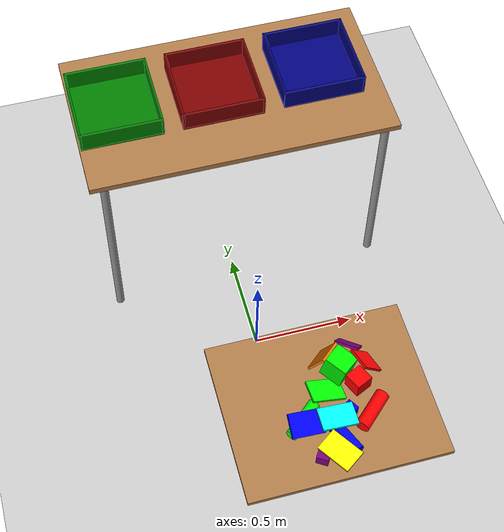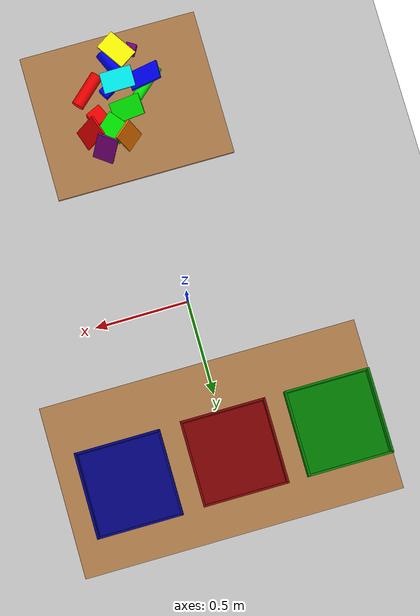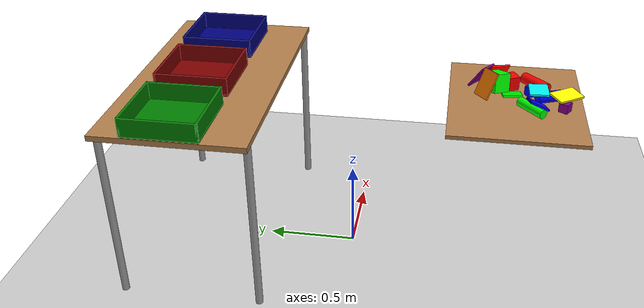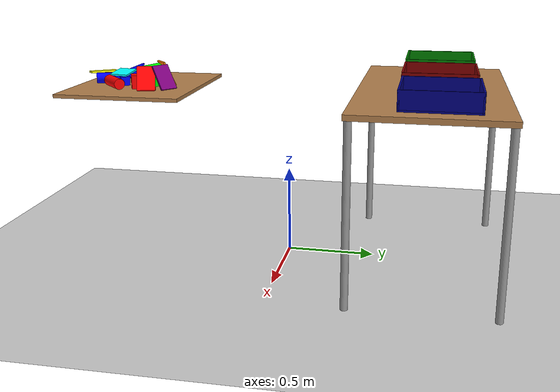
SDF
<sdf version="1.7">
 <world name="default">
  <light name="sun" type="directional">
   <pose>0 0 10 0 -0 0</pose>
   <diffuse>0.8 0.8 0.8 1</diffuse>
   <specular>0.2 0.2 0.2 1</specular>
   <attenuation>
    <range>1000</range>
    <constant>0.9</constant>
    <linear>0.01</linear>
    <quadratic>0.001</quadratic>
   </attenuation>
   <direction>-0.5 0.1 -0.9</direction>
   <spot><inner_angle>0</inner_angle><outer_angle>0</outer_angle><falloff>0</falloff></spot>
  </light>
  <model name="ground_plane">
   <static>1</static>
   <link name="link">
    <collision name="collision">
     <geometry><plane><normal>0 0 1</normal><size>100 100</size></plane></geometry>
     <surface><friction><ode><mu>100</mu><mu2>50</mu2></ode></friction></surface>
    </collision>
    <visual name="visual">
     <cast_shadows>0</cast_shadows>
     <geometry><plane><normal>0 0 1</normal><size>100 100</size></plane></geometry>
     <material>
      <script><uri>file://media/materials/scripts/gazebo.material</uri><name>Gazebo/Grey</name></script>
     </material>
    </visual>
   </link>
  </model>
  <gravity>0 0 -9.8</gravity>
  <magnetic_field>6e-06 2.3e-05 -4.2e-05</magnetic_field>
  <atmosphere type="adiabatic"/>
  <physics type="ode">
   <max_step_size>0.001</max_step_size>
   <real_time_factor>1</real_time_factor>
   <real_time_update_rate>1000</real_time_update_rate>
  </physics>
  <scene><ambient>0.4 0.4 0.4 1</ambient><background>0.7 0.7 0.7 1</background><shadows>1</shadows></scene>
  <audio><device>default</device></audio>
  <spherical_coordinates>
   <surface_model>EARTH_WGS84</surface_model>
   <latitude_deg>0</latitude_deg>
   <longitude_deg>0</longitude_deg>
   <elevation>0</elevation>
   <heading_deg>0</heading_deg>
  </spherical_coordinates>
  <model name="table">
   <static>1</static>
   <link name="link">
    <collision name="surface">
     <pose>0 0 1 0 -0 0</pose>
     <geometry><box><size>1.5 0.8 0.03</size></box></geometry>
     <surface>
      <friction><ode><mu>10</mu><mu2>5</mu2></ode></friction>
      <contact><ode><soft_cfm>0.0001</soft_cfm><soft_erp>0.4</soft_erp><kp>1e+06</kp><kd>10</kd></ode></contact>
     </surface>
    </collision>
    <visual name="visual1">
     <pose>0 0 1 0 -0 0</pose>
     <geometry><box><size>1.5 0.8 0.03</size></box></geometry>
     <material>
      <script><uri>file://media/materials/scripts/gazebo.material</uri><name>Gazebo/Wood</name></script>
     </material>
    </visual>
    <collision name="front_left_leg">
     <pose>0.68 0.38 0.5 0 -0 0</pose>
     <geometry><cylinder><radius>0.02</radius><length>1</length></cylinder></geometry>
    </collision>
    <visual name="front_left_leg">
     <pose>0.68 0.38 0.5 0 -0 0</pose>
     <geometry><cylinder><radius>0.02</radius><length>1</length></cylinder></geometry>
     <material>
      <script><uri>file://media/materials/scripts/gazebo.material</uri><name>Gazebo/Grey</name></script>
     </material>
    </visual>
    <collision name="front_right_leg">
     <pose>0.68 -0.38 0.5 0 -0 0</pose>
     <geometry><cylinder><radius>0.02</radius><length>1</length></cylinder></geometry>
    </collision>
    <visual name="front_right_leg">
     <pose>0.68 -0.38 0.5 0 -0 0</pose>
     <geometry><cylinder><radius>0.02</radius><length>1</length></cylinder></geometry>
     <material>
      <script><uri>file://media/materials/scripts/gazebo.material</uri><name>Gazebo/Grey</name></script>
     </material>
    </visual>
    <collision name="back_right_leg">
     <pose>-0.68 -0.38 0.5 0 -0 0</pose>
     <geometry><cylinder><radius>0.02</radius><length>1</length></cylinder></geometry>
    </collision>
    <visual name="back_right_leg">
     <pose>-0.68 -0.38 0.5 0 -0 0</pose>
     <geometry><cylinder><radius>0.02</radius><length>1</length></cylinder></geometry>
     <material>
      <script><uri>file://media/materials/scripts/gazebo.material</uri><name>Gazebo/Grey</name></script>
     </material>
    </visual>
    <collision name="back_left_leg">
     <pose>-0.68 0.38 0.5 0 -0 0</pose>
     <geometry><cylinder><radius>0.02</radius><length>1</length></cylinder></geometry>
    </collision>
    <visual name="back_left_leg">
     <pose>-0.68 0.38 0.5 0 -0 0</pose>
     <geometry><cylinder><radius>0.02</radius><length>1</length></cylinder></geometry>
     <material>
      <script><uri>file://media/materials/scripts/gazebo.material</uri><name>Gazebo/Grey</name></script>
     </material>
    </visual>
    <inertial>
     <inertia><ixx>1</ixx><ixy>0</ixy><ixz>0</ixz><iyy>1</iyy><iyz>0</iyz><izz>1</izz></inertia>
     <mass>50</mass>
    </inertial>
   </link>
   <pose>0.056083 0.801191 -1.2e-05 0 -0 2.5e-05</pose>
  </model>
  <plugin name="gazebo_link_attacher" filename="libgazebo_link_attacher.so"/>
  <plugin name="gazebo_ros_state" filename="libgazebo_ros_state.so">
   <namespace>/gazebo</namespace>
   <update_rate>100</update_rate>
  </plugin>
  <model name="cube_b">
   <link name="link_2">
    <inertial>
     <mass>2</mass>
     <inertia>
      <ixx>0.00083333</ixx>
      <ixy>0</ixy>
      <ixz>0</ixz>
      <iyy>0.00083333</iyy>
      <iyz>0</iyz>
      <izz>0.00083333</izz>
     </inertia>
    </inertial>
    <visual name="visual">
     <geometry><box><size>0.05 0.05 0.05</size></box></geometry>
     <material>
      <lighting>1</lighting>
      <script><uri>file://media/materials/scripts/gazebo.material</uri><name>Gazebo/Grey</name></script>
      <ambient>0 0 1 1</ambient>
      <diffuse>0 0 1 1</diffuse>
      <specular>0 0 0 1</specular>
      <emissive>0 0 0 1</emissive>
      <shader type="vertex"><normal_map>__default__</normal_map></shader>
     </material>
    </visual>
    <collision name="collision">
     <geometry><box><size>0.05 0.05 0.05</size></box></geometry>
     <surface>
      <friction>
       <ode><mu>0.8</mu><mu2>0.8</mu2><fdir1>0 0 0</fdir1><slip1>0</slip1><slip2>0</slip2></ode>
       <torsional>
        <coefficient>1</coefficient>
        <patch_radius>0</patch_radius>
        <surface_radius>0</surface_radius>
        <use_patch_radius>1</use_patch_radius>
        <ode><slip>0</slip></ode>
       </torsional>
      </friction>
      <bounce><restitution_coefficient>0</restitution_coefficient><threshold>1e+06</threshold></bounce>
      <contact>
       <collide_without_contact>0</collide_without_contact>
       <collide_without_contact_bitmask>1</collide_without_contact_bitmask>
       <collide_bitmask>1</collide_bitmask>
       <ode>
        <soft_cfm>0.0001</soft_cfm>
        <soft_erp>0.4</soft_erp>
        <kp>1e+06</kp>
        <kd>10</kd>
        <max_vel>0.01</max_vel>
        <min_depth>0</min_depth>
       </ode>
      </contact>
     </surface>
    </collision>
   </link>
   <static>0</static>
   <allow_auto_disable>0</allow_auto_disable>
   <pose>0.112492 -0.943072 1.01094 -0.004136 0.001196 2.11675</pose>
  </model>
  <model name="cube_g">
   <link name="link_2">
    <inertial>
     <mass>2</mass>
     <inertia>
      <ixx>0.00333333</ixx>
      <iyy>0.00333333</iyy>
      <izz>0.00333333</izz>
      <ixy>0</ixy>
      <ixz>0</ixz>
      <iyz>0</iyz>
     </inertia>
    </inertial>
    <visual name="visual">
     <geometry><box><size>0.1 0.1 0.1</size></box></geometry>
     <material>
      <lighting>1</lighting>
      <script><uri>file://media/materials/scripts/gazebo.material</uri><name>Gazebo/Grey</name></script>
      <ambient>0 1 0 1</ambient>
      <diffuse>0 1 0 1</diffuse>
      <specular>0 0 0 1</specular>
      <emissive>0 0 0 1</emissive>
      <shader type="vertex"><normal_map>__default__</normal_map></shader>
     </material>
    </visual>
    <collision name="collision">
     <geometry><box><size>0.1 0.1 0.1</size></box></geometry>
     <surface>
      <friction>
       <ode><mu>0.8</mu><mu2>0.8</mu2><fdir1>0 0 0</fdir1><slip1>0</slip1><slip2>0</slip2></ode>
       <torsional>
        <coefficient>1</coefficient>
        <patch_radius>0</patch_radius>
        <surface_radius>0</surface_radius>
        <use_patch_radius>1</use_patch_radius>
        <ode><slip>0</slip></ode>
       </torsional>
      </friction>
      <bounce><restitution_coefficient>0</restitution_coefficient><threshold>1e+06</threshold></bounce>
      <contact>
       <collide_without_contact>0</collide_without_contact>
       <collide_without_contact_bitmask>1</collide_without_contact_bitmask>
       <collide_bitmask>1</collide_bitmask>
       <ode>
        <soft_cfm>0.0001</soft_cfm>
        <soft_erp>0.4</soft_erp>
        <kp>1e+06</kp>
        <kd>10</kd>
        <max_vel>0.01</max_vel>
        <min_depth>0</min_depth>
       </ode>
      </contact>
     </surface>
    </collision>
   </link>
   <static>0</static>
   <allow_auto_disable>0</allow_auto_disable>
   <pose>0.123781 -0.757255 1.04953 -2.46324 -1.36837 0.001389</pose>
  </model>
  <model name="cube_r">
   <link name="link_2">
    <inertial>
     <mass>2</mass>
     <inertia>
      <ixx>0.001875</ixx>
      <ixy>0</ixy>
      <ixz>0</ixz>
      <iyy>0.001875</iyy>
      <iyz>0</iyz>
      <izz>0.001875</izz>
     </inertia>
    </inertial>
    <visual name="visual">
     <geometry><box><size>0.075 0.075 0.075</size></box></geometry>
     <material>
      <lighting>1</lighting>
      <script><uri>file://media/materials/scripts/gazebo.material</uri><name>Gazebo/Grey</name></script>
      <ambient>1 0 0 1</ambient>
      <diffuse>1 0 0 1</diffuse>
      <specular>0 0 0 1</specular>
      <emissive>0 0 0 1</emissive>
      <shader type="vertex"><normal_map>__default__</normal_map></shader>
     </material>
    </visual>
    <collision name="collision">
     <geometry><box><size>0.075 0.075 0.075</size></box></geometry>
     <surface>
      <friction>
       <ode><mu>0.8</mu><mu2>0.8</mu2><fdir1>0 0 0</fdir1><slip1>0</slip1><slip2>0</slip2></ode>
       <torsional>
        <coefficient>1</coefficient>
        <patch_radius>0</patch_radius>
        <surface_radius>0</surface_radius>
        <use_patch_radius>1</use_patch_radius>
        <ode><slip>0</slip></ode>
       </torsional>
      </friction>
      <bounce><restitution_coefficient>0</restitution_coefficient><threshold>1e+06</threshold></bounce>
      <contact>
       <collide_without_contact>0</collide_without_contact>
       <collide_without_contact_bitmask>1</collide_without_contact_bitmask>
       <collide_bitmask>1</collide_bitmask>
       <ode>
        <soft_cfm>0.0001</soft_cfm>
        <soft_erp>0.4</soft_erp>
        <kp>1e+06</kp>
        <kd>10</kd>
        <max_vel>0.01</max_vel>
        <min_depth>0</min_depth>
       </ode>
      </contact>
     </surface>
    </collision>
   </link>
   <static>0</static>
   <allow_auto_disable>0</allow_auto_disable>
   <pose>0.185536 -0.832558 1.02387 -0.15909 1.56648 0.267414</pose>
  </model>
  <model name="cylinder_r">
   <link name="link_0">
    <inertial>
     <mass>0.2</mass>
     <inertia>
      <ixx>0.0005267</ixx>
      <ixy>0</ixy>
      <ixz>0</ixz>
      <iyy>0.0005267</iyy>
      <iyz>0</iyz>
      <izz>9e-05</izz>
     </inertia>
    </inertial>
    <visual name="visual">
     <geometry><cylinder><radius>0.03</radius><length>0.17</length></cylinder></geometry>
     <material>
      <lighting>1</lighting>
      <script><uri>file://media/materials/scripts/gazebo.material</uri><name>Gazebo/Grey</name></script>
      <ambient>1 0 0 1</ambient>
      <diffuse>1 0 0 1</diffuse>
      <specular>0 0 0 1</specular>
      <emissive>0 0 0 1</emissive>
      <shader type="vertex"><normal_map>__default__</normal_map></shader>
     </material>
    </visual>
    <collision name="collision">
     <geometry><cylinder><radius>0.03</radius><length>0.17</length></cylinder></geometry>
     <surface>
      <friction>
       <ode><mu>0.5</mu><mu2>0.5</mu2><fdir1>0 0 0</fdir1><slip1>0</slip1><slip2>0</slip2></ode>
       <torsional>
        <coefficient>1</coefficient>
        <patch_radius>0</patch_radius>
        <surface_radius>0</surface_radius>
        <use_patch_radius>1</use_patch_radius>
        <ode><slip>0</slip></ode>
       </torsional>
      </friction>
      <bounce><restitution_coefficient>0</restitution_coefficient><threshold>1e+06</threshold></bounce>
      <contact>
       <collide_without_contact>0</collide_without_contact>
       <collide_without_contact_bitmask>1</collide_without_contact_bitmask>
       <collide_bitmask>1</collide_bitmask>
       <ode>
        <soft_cfm>0.0001</soft_cfm>
        <soft_erp>0.4</soft_erp>
        <kp>1e+06</kp>
        <kd>10</kd>
        <max_vel>0.01</max_vel>
        <min_depth>0</min_depth>
       </ode>
      </contact>
     </surface>
    </collision>
   </link>
   <static>0</static>
   <allow_auto_disable>0</allow_auto_disable>
   <pose>0.200333 -0.969978 1.01628 1.56546 0.770203 2.31146</pose>
  </model>
  <model name="cylinder_b">
   <link name="link_0">
    <inertial>
     <mass>0.2</mass>
     <inertia>
      <ixx>0.0005267</ixx>
      <ixy>0</ixy>
      <ixz>0</ixz>
      <iyy>0.0005267</iyy>
      <iyz>0</iyz>
      <izz>9e-05</izz>
     </inertia>
    </inertial>
    <visual name="visual">
     <geometry><cylinder><radius>0.03</radius><length>0.17</length></cylinder></geometry>
     <material>
      <lighting>1</lighting>
      <ambient>0 0 1 1</ambient>
      <diffuse>0 0 1 1</diffuse>
      <specular>0.1 0.1 0.1 1</specular>
      <emissive>0 0 0 1</emissive>
      <shader type="vertex"><normal_map>__default__</normal_map></shader>
     </material>
    </visual>
    <collision name="collision">
     <geometry><cylinder><radius>0.03</radius><length>0.17</length></cylinder></geometry>
     <surface>
      <friction>
       <ode><mu>0.4</mu><mu2>0.4</mu2><fdir1>0 0 0</fdir1><slip1>0</slip1><slip2>0</slip2></ode>
       <torsional>
        <coefficient>1</coefficient>
        <patch_radius>0</patch_radius>
        <surface_radius>0</surface_radius>
        <use_patch_radius>1</use_patch_radius>
        <ode><slip>0</slip></ode>
       </torsional>
      </friction>
      <bounce><restitution_coefficient>0</restitution_coefficient><threshold>1e+06</threshold></bounce>
      <contact>
       <collide_without_contact>0</collide_without_contact>
       <collide_without_contact_bitmask>1</collide_without_contact_bitmask>
       <collide_bitmask>1</collide_bitmask>
       <ode>
        <soft_cfm>0.0001</soft_cfm>
        <soft_erp>0.4</soft_erp>
        <kp>1e+06</kp>
        <kd>10</kd>
        <max_vel>0.01</max_vel>
        <min_depth>0</min_depth>
       </ode>
      </contact>
     </surface>
    </collision>
   </link>
   <static>0</static>
   <allow_auto_disable>0</allow_auto_disable>
   <pose>0.055147 -1.0478 1.01557 1.56559 1.42754 0.397446</pose>
  </model>
  <model name="cylinder_g">
   <link name="link_0">
    <inertial>
     <mass>0.2</mass>
     <inertia>
      <ixx>0.0005129</ixx>
      <ixy>0</ixy>
      <ixz>0</ixz>
      <iyy>0.0005129</iyy>
      <iyz>0</iyz>
      <izz>6.25e-05</izz>
     </inertia>
    </inertial>
    <visual name="visual">
     <geometry><cylinder><radius>0.025</radius><length>0.17</length></cylinder></geometry>
     <material>
      <lighting>1</lighting>
      <ambient>0 1 0 1</ambient>
      <diffuse>0 1 0 1</diffuse>
      <specular>0.1 0.1 0.1 1</specular>
      <emissive>0 0 0 1</emissive>
      <shader type="vertex"><normal_map>__default__</normal_map></shader>
     </material>
    </visual>
    <collision name="collision">
     <geometry><cylinder><radius>0.025</radius><length>0.17</length></cylinder></geometry>
     <surface>
      <friction>
       <ode><mu>0.5</mu><mu2>0.5</mu2><fdir1>0 0 0</fdir1><slip1>0</slip1><slip2>0</slip2></ode>
       <torsional>
        <coefficient>1</coefficient>
        <patch_radius>0</patch_radius>
        <surface_radius>0</surface_radius>
        <use_patch_radius>1</use_patch_radius>
        <ode><slip>0</slip></ode>
       </torsional>
      </friction>
      <bounce><restitution_coefficient>0</restitution_coefficient><threshold>1e+06</threshold></bounce>
      <contact>
       <collide_without_contact>0</collide_without_contact>
       <collide_without_contact_bitmask>1</collide_without_contact_bitmask>
       <collide_bitmask>1</collide_bitmask>
       <ode>
        <soft_cfm>0.0001</soft_cfm>
        <soft_erp>0.4</soft_erp>
        <kp>1e+06</kp>
        <kd>10</kd>
        <max_vel>0.01</max_vel>
        <min_depth>0</min_depth>
       </ode>
      </contact>
     </surface>
    </collision>
   </link>
   <static>0</static>
   <allow_auto_disable>0</allow_auto_disable>
   <pose>-0.080159 -0.935225 1.01013 -1.58097 -1.18928 2.29525</pose>
  </model>
  <model name="cuboid_r">
   <link name="link">
    <inertial>
     <mass>2</mass>
     <inertia>
      <ixx>0.001683</ixx>
      <iyy>0.003767</iyy>
      <izz>0.005417</izz>
      <ixy>0</ixy>
      <ixz>0</ixz>
      <iyz>0</iyz>
     </inertia>
    </inertial>
    <visual name="visual">
     <geometry><box><size>0.15 0.1 0.01</size></box></geometry>
     <material><ambient>1 0 0 1</ambient><diffuse>1 0 0 1</diffuse><specular>0.1 0.1 0.1 1</specular></material>
    </visual>
    <collision name="collision">
     <geometry><box><size>0.15 0.1 0.01</size></box></geometry>
     <surface>
      <friction>
       <ode><mu>0.6</mu><mu2>0.6</mu2><fdir1>0 0 0</fdir1><slip1>0</slip1><slip2>0</slip2></ode>
       <torsional>
        <coefficient>1</coefficient>
        <patch_radius>0</patch_radius>
        <surface_radius>0</surface_radius>
        <use_patch_radius>1</use_patch_radius>
        <ode><slip>0</slip></ode>
       </torsional>
      </friction>
      <bounce><restitution_coefficient>0</restitution_coefficient><threshold>1e+06</threshold></bounce>
      <contact>
       <collide_without_contact>0</collide_without_contact>
       <collide_without_contact_bitmask>1</collide_without_contact_bitmask>
       <collide_bitmask>1</collide_bitmask>
       <ode>
        <soft_cfm>0.0001</soft_cfm>
        <soft_erp>0.4</soft_erp>
        <kp>1e+06</kp>
        <kd>10</kd>
        <max_vel>0.01</max_vel>
        <min_depth>0</min_depth>
       </ode>
      </contact>
     </surface>
    </collision>
   </link>
   <static>0</static>
   <allow_auto_disable>0</allow_auto_disable>
   <pose>0.237823 -0.764089 1.04917 0.000413 -0.911117 -2.82503</pose>
  </model>
  <model name="cuboid_g">
   <link name="link">
    <inertial>
     <mass>2</mass>
     <inertia>
      <ixx>0.001683</ixx>
      <iyy>0.003767</iyy>
      <izz>0.005417</izz>
      <ixy>0</ixy>
      <ixz>0</ixz>
      <iyz>0</iyz>
     </inertia>
    </inertial>
    <visual name="visual">
     <geometry><box><size>0.15 0.1 0.01</size></box></geometry>
     <material><ambient>0 1 0 1</ambient><diffuse>0 1 0 1</diffuse><specular>0.1 0.1 0.1 1</specular></material>
    </visual>
    <collision name="collision">
     <geometry><box><size>0.15 0.1 0.01</size></box></geometry>
     <surface>
      <friction>
       <ode><mu>0.6</mu><mu2>0.6</mu2><fdir1>0 0 0</fdir1><slip1>0</slip1><slip2>0</slip2></ode>
       <torsional>
        <coefficient>1</coefficient>
        <patch_radius>0</patch_radius>
        <surface_radius>0</surface_radius>
        <use_patch_radius>1</use_patch_radius>
        <ode><slip>0</slip></ode>
       </torsional>
      </friction>
      <bounce><restitution_coefficient>0</restitution_coefficient><threshold>1e+06</threshold></bounce>
      <contact>
       <collide_without_contact>0</collide_without_contact>
       <collide_without_contact_bitmask>1</collide_without_contact_bitmask>
       <collide_bitmask>1</collide_bitmask>
       <ode>
        <soft_cfm>0.0001</soft_cfm>
        <soft_erp>0.4</soft_erp>
        <kp>1e+06</kp>
        <kd>10</kd>
        <max_vel>0.01</max_vel>
        <min_depth>0</min_depth>
       </ode>
      </contact>
     </surface>
    </collision>
   </link>
   <static>0</static>
   <allow_auto_disable>0</allow_auto_disable>
   <pose>0.044548 -0.837761 1.01763 0.079278 -0.312381 -3.11544</pose>
  </model>
  <model name="cuboid_b">
   <link name="link">
    <inertial>
     <mass>2</mass>
     <inertia>
      <ixx>0.001683</ixx>
      <iyy>0.003767</iyy>
      <izz>0.005417</izz>
      <ixy>0</ixy>
      <ixz>0</ixz>
      <iyz>0</iyz>
     </inertia>
    </inertial>
    <visual name="visual">
     <geometry><box><size>0.15 0.1 0.01</size></box></geometry>
     <material><ambient>0 0 1 1</ambient><diffuse>0 0 1 1</diffuse><specular>0.1 0.1 0.1 1</specular></material>
    </visual>
    <collision name="collision">
     <geometry><box><size>0.15 0.1 0.01</size></box></geometry>
     <surface>
      <friction>
       <ode><mu>0.6</mu><mu2>0.6</mu2><fdir1>0 0 0</fdir1><slip1>0</slip1><slip2>0</slip2></ode>
       <torsional>
        <coefficient>1</coefficient>
        <patch_radius>0</patch_radius>
        <surface_radius>0</surface_radius>
        <use_patch_radius>1</use_patch_radius>
        <ode><slip>0</slip></ode>
       </torsional>
      </friction>
      <bounce><restitution_coefficient>0</restitution_coefficient><threshold>1e+06</threshold></bounce>
      <contact>
       <collide_without_contact>0</collide_without_contact>
       <collide_without_contact_bitmask>1</collide_without_contact_bitmask>
       <collide_bitmask>1</collide_bitmask>
       <ode>
        <soft_cfm>0.0001</soft_cfm>
        <soft_erp>0.4</soft_erp>
        <kp>1e+06</kp>
        <kd>10</kd>
        <max_vel>0.01</max_vel>
        <min_depth>0</min_depth>
       </ode>
      </contact>
     </surface>
    </collision>
   </link>
   <static>0</static>
   <allow_auto_disable>0</allow_auto_disable>
   <pose>-0.076046 -0.964432 1.03075 0.400829 0.302713 0.095386</pose>
  </model>
  <model name="cuboid_purple">
   <link name="link">
    <inertial>
     <mass>2</mass>
     <inertia>
      <ixx>0.001683</ixx>
      <iyy>0.003767</iyy>
      <izz>0.005417</izz>
      <ixy>0</ixy>
      <ixz>0</ixz>
      <iyz>0</iyz>
     </inertia>
    </inertial>
    <visual name="visual">
     <geometry><box><size>0.15 0.1 0.01</size></box></geometry>
     <material>
      <ambient>0.5 0 0.5 1</ambient>
      <diffuse>0.5 0 0.5 1</diffuse>
      <specular>0.1 0.1 0.1 1</specular>
     </material>
    </visual>
    <collision name="collision">
     <geometry><box><size>0.15 0.1 0.01</size></box></geometry>
     <surface>
      <friction>
       <ode><mu>0.6</mu><mu2>0.6</mu2><fdir1>0 0 0</fdir1><slip1>0</slip1><slip2>0</slip2></ode>
       <torsional>
        <coefficient>1</coefficient>
        <patch_radius>0</patch_radius>
        <surface_radius>0</surface_radius>
        <use_patch_radius>1</use_patch_radius>
        <ode><slip>0</slip></ode>
       </torsional>
      </friction>
      <bounce><restitution_coefficient>0</restitution_coefficient><threshold>1e+06</threshold></bounce>
      <contact>
       <collide_without_contact>0</collide_without_contact>
       <collide_without_contact_bitmask>1</collide_without_contact_bitmask>
       <collide_bitmask>1</collide_bitmask>
       <ode>
        <soft_cfm>0.0001</soft_cfm>
        <soft_erp>0.4</soft_erp>
        <kp>1e+06</kp>
        <kd>10</kd>
        <max_vel>0.01</max_vel>
        <min_depth>0</min_depth>
       </ode>
      </contact>
     </surface>
    </collision>
   </link>
   <static>0</static>
   <allow_auto_disable>0</allow_auto_disable>
   <pose>0.19012 -0.675098 1.05091 -3.13699 -0.957518 -2.21032</pose>
  </model>
  <model name="cuboid_orange">
   <link name="link">
    <inertial>
     <mass>2</mass>
     <inertia>
      <ixx>0.001683</ixx>
      <iyy>0.003767</iyy>
      <izz>0.005417</izz>
      <ixy>0</ixy>
      <ixz>0</ixz>
      <iyz>0</iyz>
     </inertia>
    </inertial>
    <visual name="visual">
     <geometry><box><size>0.15 0.1 0.01</size></box></geometry>
     <material>
      <ambient>1 0.5 0 1</ambient>
      <diffuse>1 0.5 0 1</diffuse>
      <specular>0.1 0.1 0.1 1</specular>
     </material>
    </visual>
    <collision name="collision">
     <geometry><box><size>0.15 0.1 0.01</size></box></geometry>
     <surface>
      <friction>
       <ode><mu>0.6</mu><mu2>0.6</mu2><fdir1>0 0 0</fdir1><slip1>0</slip1><slip2>0</slip2></ode>
       <torsional>
        <coefficient>1</coefficient>
        <patch_radius>0</patch_radius>
        <surface_radius>0</surface_radius>
        <use_patch_radius>1</use_patch_radius>
        <ode><slip>0</slip></ode>
       </torsional>
      </friction>
      <bounce><restitution_coefficient>0</restitution_coefficient><threshold>1e+06</threshold></bounce>
      <contact>
       <collide_without_contact>0</collide_without_contact>
       <collide_without_contact_bitmask>1</collide_without_contact_bitmask>
       <collide_bitmask>1</collide_bitmask>
       <ode>
        <soft_cfm>0.0001</soft_cfm>
        <soft_erp>0.4</soft_erp>
        <kp>1e+06</kp>
        <kd>10</kd>
        <max_vel>0.01</max_vel>
        <min_depth>0</min_depth>
       </ode>
      </contact>
     </surface>
    </collision>
   </link>
   <static>0</static>
   <allow_auto_disable>0</allow_auto_disable>
   <pose>0.070473 -0.702713 1.05598 3.13232 1.13115 2.26858</pose>
  </model>
  <model name="cuboid_yellow">
   <link name="link">
    <inertial>
     <mass>2</mass>
     <inertia>
      <ixx>0.001683</ixx>
      <iyy>0.003767</iyy>
      <izz>0.005417</izz>
      <ixy>0</ixy>
      <ixz>0</ixz>
      <iyz>0</iyz>
     </inertia>
    </inertial>
    <visual name="visual">
     <geometry><box><size>0.15 0.1 0.01</size></box></geometry>
     <material><ambient>1 1 0 1</ambient><diffuse>1 1 0 1</diffuse><specular>0.1 0.1 0.1 1</specular></material>
    </visual>
    <collision name="collision">
     <geometry><box><size>0.15 0.1 0.01</size></box></geometry>
     <surface>
      <friction>
       <ode><mu>0.6</mu><mu2>0.6</mu2><fdir1>0 0 0</fdir1><slip1>0</slip1><slip2>0</slip2></ode>
       <torsional>
        <coefficient>1</coefficient>
        <patch_radius>0</patch_radius>
        <surface_radius>0</surface_radius>
        <use_patch_radius>1</use_patch_radius>
        <ode><slip>0</slip></ode>
       </torsional>
      </friction>
      <bounce><restitution_coefficient>0</restitution_coefficient><threshold>1e+06</threshold></bounce>
      <contact>
       <collide_without_contact>0</collide_without_contact>
       <collide_without_contact_bitmask>1</collide_without_contact_bitmask>
       <collide_bitmask>1</collide_bitmask>
       <ode>
        <soft_cfm>0.0001</soft_cfm>
        <soft_erp>0.4</soft_erp>
        <kp>1e+06</kp>
        <kd>10</kd>
        <max_vel>0.01</max_vel>
        <min_depth>0</min_depth>
       </ode>
      </contact>
     </surface>
    </collision>
   </link>
   <static>0</static>
   <allow_auto_disable>0</allow_auto_disable>
   <pose>0.017145 -1.11516 1.04524 -0.102708 0.001527 2.16352</pose>
  </model>
  <model name="cuboid_cyan">
   <link name="link">
    <inertial>
     <mass>2</mass>
     <inertia>
      <ixx>0.001683</ixx>
      <iyy>0.003767</iyy>
      <izz>0.005417</izz>
      <ixy>0</ixy>
      <ixz>0</ixz>
      <iyz>0</iyz>
     </inertia>
    </inertial>
    <visual name="visual">
     <geometry><box><size>0.15 0.1 0.01</size></box></geometry>
     <material><ambient>0 1 1 1</ambient><diffuse>0 1 1 1</diffuse><specular>0.1 0.1 0.1 1</specular></material>
    </visual>
    <collision name="collision">
     <geometry><box><size>0.15 0.1 0.01</size></box></geometry>
     <surface>
      <friction>
       <ode><mu>0.6</mu><mu2>0.6</mu2><fdir1>0 0 0</fdir1><slip1>0</slip1><slip2>0</slip2></ode>
       <torsional>
        <coefficient>1</coefficient>
        <patch_radius>0</patch_radius>
        <surface_radius>0</surface_radius>
        <use_patch_radius>1</use_patch_radius>
        <ode><slip>0</slip></ode>
       </torsional>
      </friction>
      <bounce><restitution_coefficient>0</restitution_coefficient><threshold>1e+06</threshold></bounce>
      <contact>
       <collide_without_contact>0</collide_without_contact>
       <collide_without_contact_bitmask>1</collide_without_contact_bitmask>
       <collide_bitmask>1</collide_bitmask>
       <ode>
        <soft_cfm>0.0001</soft_cfm>
        <soft_erp>0.4</soft_erp>
        <kp>1e+06</kp>
        <kd>10</kd>
        <max_vel>0.01</max_vel>
        <min_depth>0</min_depth>
       </ode>
      </contact>
     </surface>
    </collision>
   </link>
   <static>0</static>
   <allow_auto_disable>0</allow_auto_disable>
   <pose>0.050575 -0.975094 1.04853 -0.035315 0.077057 -0.006392</pose>
  </model>
  <model name="workspace">
   <link name="link">
    <inertial>
     <mass>100</mass>
     <inertia><ixx>6.02417</ixx><ixy>0</ixy><ixz>0</ixz><iyy>4.08667</iyy><iyz>0</iyz><izz>10.1042</izz></inertia>
    </inertial>
    <visual name="visual">
     <geometry><box><size>0.7 0.85 0.02</size></box></geometry>
     <material>
      <script><name>Gazebo/Wood</name><uri>file://media/materials/scripts/gazebo.material</uri></script>
      <shader type="pixel"/>
     </material>
    </visual>
    <collision name="collision">
     <geometry><box><size>0.7 0.85 0.02</size></box></geometry>
     <surface>
      <friction>
       <ode><mu>100</mu><mu2>50</mu2><fdir1>0 0 0</fdir1><slip1>0</slip1><slip2>0</slip2></ode>
       <torsional>
        <coefficient>1</coefficient>
        <patch_radius>0</patch_radius>
        <surface_radius>0</surface_radius>
        <use_patch_radius>1</use_patch_radius>
        <ode><slip>0</slip></ode>
       </torsional>
      </friction>
      <bounce><restitution_coefficient>0</restitution_coefficient><threshold>1e+06</threshold></bounce>
      <contact>
       <collide_without_contact>0</collide_without_contact>
       <collide_without_contact_bitmask>1</collide_without_contact_bitmask>
       <collide_bitmask>1</collide_bitmask>
       <ode>
        <soft_cfm>0.0001</soft_cfm>
        <soft_erp>0.2</soft_erp>
        <kp>1e+13</kp>
        <kd>10</kd>
        <max_vel>0.01</max_vel>
        <min_depth>0</min_depth>
       </ode>
       <bullet>
        <split_impulse>1</split_impulse>
        <split_impulse_penetration_threshold>-0.01</split_impulse_penetration_threshold>
        <soft_cfm>0</soft_cfm>
        <soft_erp>0.2</soft_erp>
        <kp>1e+13</kp>
        <kd>1</kd>
       </bullet>
      </contact>
     </surface>
    </collision>
   </link>
   <static>1</static>
   <pose>0.0416 -0.859914 0.975746 -0.004154 -0.001127 1.57039</pose>
  </model>
  <model name="tray_red">
   <static>1</static>
   <link name="link">
    <collision name="base_collision">
     <pose>0 0 0.01 0 -0 0</pose>
     <geometry><box><size>0.4 0.4 0.01</size></box></geometry>
     <surface><contact><ode><mu>50</mu><mu2>50</mu2></ode></contact></surface>
    </collision>
    <visual name="base_visual">
     <pose>0 0 0.01 0 -0 0</pose>
     <geometry><box><size>0.4 0.4 0.01</size></box></geometry>
     <material>
      <ambient>1 0 0 1</ambient>
      <diffuse>0.5 0 0 1</diffuse>
      <specular>0 0 0 1</specular>
      <emissive>0 0 0 1</emissive>
      <shininess>100</shininess>
     </material>
    </visual>
    <collision name="front_collision">
     <pose>0 0.195 0.06 0 -0 0</pose>
     <geometry><box><size>0.4 0.01 0.1</size></box></geometry>
    </collision>
    <visual name="front_visual">
     <pose>0 0.195 0.06 0 -0 0</pose>
     <geometry><box><size>0.4 0.01 0.1</size></box></geometry>
     <material>
      <ambient>1 0 0 1</ambient>
      <diffuse>0.5 0 0 1</diffuse>
      <specular>0 0 0 1</specular>
      <emissive>0 0 0 1</emissive>
     </material>
    </visual>
    <collision name="back_collision">
     <pose>0 -0.195 0.06 0 -0 0</pose>
     <geometry><box><size>0.4 0.01 0.1</size></box></geometry>
    </collision>
    <visual name="back_visual">
     <pose>0 -0.195 0.06 0 -0 0</pose>
     <geometry><box><size>0.4 0.01 0.1</size></box></geometry>
     <material>
      <ambient>1 0 0 1</ambient>
      <diffuse>0.5 0 0 1</diffuse>
      <specular>0 0 0 1</specular>
      <emissive>0 0 0 1</emissive>
     </material>
    </visual>
    <collision name="left_collision">
     <pose>0.195 0 0.06 0 -0 0</pose>
     <geometry><box><size>0.01 0.4 0.1</size></box></geometry>
    </collision>
    <visual name="left_visual">
     <pose>0.195 0 0.06 0 -0 0</pose>
     <geometry><box><size>0.01 0.4 0.1</size></box></geometry>
     <material>
      <ambient>1 0 0 1</ambient>
      <diffuse>0.5 0 0 1</diffuse>
      <specular>0 0 0 1</specular>
      <emissive>0 0 0 1</emissive>
     </material>
    </visual>
    <collision name="right_collision">
     <pose>-0.195 0 0.06 0 -0 0</pose>
     <geometry><box><size>0.01 0.4 0.1</size></box></geometry>
    </collision>
    <visual name="right_visual">
     <pose>-0.195 0 0.06 0 -0 0</pose>
     <geometry><box><size>0.01 0.4 0.1</size></box></geometry>
     <material>
      <ambient>1 0 0 1</ambient>
      <diffuse>0.5 0 0 1</diffuse>
      <specular>0 0 0 1</specular>
      <emissive>0 0 0 1</emissive>
     </material>
    </visual>
    <inertial>
     <inertia><ixx>1</ixx><ixy>0</ixy><ixz>0</ixz><iyy>1</iyy><iyz>0</iyz><izz>1</izz></inertia>
     <mass>1</mass>
    </inertial>
   </link>
   <pose>0.003367 0.836815 1.00999 0 -0 0</pose>
  </model>
  <model name="tray_green">
   <static>1</static>
   <link name="link">
    <collision name="base_collision">
     <pose>0 0 0.01 0 -0 0</pose>
     <geometry><box><size>0.4 0.4 0.01</size></box></geometry>
     <surface><contact><ode><mu>50</mu><mu2>50</mu2></ode></contact></surface>
    </collision>
    <visual name="base_visual">
     <pose>0 0 0.01 0 -0 0</pose>
     <geometry><box><size>0.4 0.4 0.01</size></box></geometry>
     <material><ambient>0 1 0 1</ambient><diffuse>0 0.5 0 1</diffuse></material>
    </visual>
    <collision name="front_collision">
     <pose>0 0.195 0.06 0 -0 0</pose>
     <geometry><box><size>0.4 0.01 0.1</size></box></geometry>
    </collision>
    <visual name="front_visual">
     <pose>0 0.195 0.06 0 -0 0</pose>
     <geometry><box><size>0.4 0.01 0.1</size></box></geometry>
     <material><ambient>0 1 0 1</ambient><diffuse>0 0.5 0 1</diffuse></material>
    </visual>
    <collision name="back_collision">
     <pose>0 -0.195 0.06 0 -0 0</pose>
     <geometry><box><size>0.4 0.01 0.1</size></box></geometry>
    </collision>
    <visual name="back_visual">
     <pose>0 -0.195 0.06 0 -0 0</pose>
     <geometry><box><size>0.4 0.01 0.1</size></box></geometry>
     <material><ambient>0 1 0 1</ambient><diffuse>0 0.5 0 1</diffuse></material>
    </visual>
    <collision name="left_collision">
     <pose>0.195 0 0.06 0 -0 0</pose>
     <geometry><box><size>0.01 0.4 0.1</size></box></geometry>
    </collision>
    <visual name="left_visual">
     <pose>0.195 0 0.06 0 -0 0</pose>
     <geometry><box><size>0.01 0.4 0.1</size></box></geometry>
     <material><ambient>0 1 0 1</ambient><diffuse>0 0.5 0 1</diffuse></material>
    </visual>
    <collision name="right_collision">
     <pose>-0.195 0 0.06 0 -0 0</pose>
     <geometry><box><size>0.01 0.4 0.1</size></box></geometry>
    </collision>
    <visual name="right_visual">
     <pose>-0.195 0 0.06 0 -0 0</pose>
     <geometry><box><size>0.01 0.4 0.1</size></box></geometry>
     <material><ambient>0 1 0 1</ambient><diffuse>0 0.5 0 1</diffuse></material>
    </visual>
    <inertial>
     <inertia><ixx>1</ixx><ixy>0</ixy><ixz>0</ixz><iyy>1</iyy><iyz>0</iyz><izz>1</izz></inertia>
     <mass>1</mass>
    </inertial>
   </link>
   <pose>-0.487214 0.834657 1.00999 0 -0 0</pose>
  </model>
  <model name="tray_blue">
   <static>1</static>
   <link name="link">
    <collision name="base_collision">
     <pose>0 0 0.01 0 -0 0</pose>
     <geometry><box><size>0.4 0.4 0.01</size></box></geometry>
     <surface><contact><ode><mu>50</mu><mu2>50</mu2></ode></contact></surface>
    </collision>
    <visual name="base_visual">
     <pose>0 0 0.01 0 -0 0</pose>
     <geometry><box><size>0.4 0.4 0.01</size></box></geometry>
     <material><ambient>0 0 1 1</ambient><diffuse>0 0 0.5 1</diffuse></material>
    </visual>
    <collision name="front_collision">
     <pose>0 0.195 0.06 0 -0 0</pose>
     <geometry><box><size>0.4 0.01 0.1</size></box></geometry>
    </collision>
    <visual name="front_visual">
     <pose>0 0.195 0.06 0 -0 0</pose>
     <geometry><box><size>0.4 0.01 0.1</size></box></geometry>
     <material><ambient>0 0 1 1</ambient><diffuse>0 0 0.5 1</diffuse></material>
    </visual>
    <collision name="back_collision">
     <pose>0 -0.195 0.06 0 -0 0</pose>
     <geometry><box><size>0.4 0.01 0.1</size></box></geometry>
    </collision>
    <visual name="back_visual">
     <pose>0 -0.195 0.06 0 -0 0</pose>
     <geometry><box><size>0.4 0.01 0.1</size></box></geometry>
     <material><ambient>0 0 1 1</ambient><diffuse>0 0 0.5 1</diffuse></material>
    </visual>
    <collision name="left_collision">
     <pose>0.195 0 0.06 0 -0 0</pose>
     <geometry><box><size>0.01 0.4 0.1</size></box></geometry>
    </collision>
    <visual name="left_visual">
     <pose>0.195 0 0.06 0 -0 0</pose>
     <geometry><box><size>0.01 0.4 0.1</size></box></geometry>
     <material><ambient>0 0 1 1</ambient><diffuse>0 0 0.5 1</diffuse></material>
    </visual>
    <collision name="right_collision">
     <pose>-0.195 0 0.06 0 -0 0</pose>
     <geometry><box><size>0.01 0.4 0.1</size></box></geometry>
    </collision>
    <visual name="right_visual">
     <pose>-0.195 0 0.06 0 -0 0</pose>
     <geometry><box><size>0.01 0.4 0.1</size></box></geometry>
     <material><ambient>0 0 1 1</ambient><diffuse>0 0 0.5 1</diffuse></material>
    </visual>
    <inertial>
     <inertia><ixx>1</ixx><ixy>0</ixy><ixz>0</ixz><iyy>1</iyy><iyz>0</iyz><izz>1</izz></inertia>
     <mass>1</mass>
    </inertial>
   </link>
   <pose>0.500589 0.844197 1.00999 0 -0 0</pose>
  </model>
  <model name="cube_purple">
   <link name="link_2">
    <inertial>
     <mass>2</mass>
     <inertia>
      <ixx>0.00083333</ixx>
      <ixy>0</ixy>
      <ixz>0</ixz>
      <iyy>0.00083333</iyy>
      <iyz>0</iyz>
      <izz>0.00083333</izz>
     </inertia>
    </inertial>
    <visual name="visual">
     <geometry><box><size>0.05 0.05 0.05</size></box></geometry>
     <material>
      <lighting>1</lighting>
      <script><uri>file://media/materials/scripts/gazebo.material</uri><name>Gazebo/Grey</name></script>
      <ambient>0.5 0 0.5 1</ambient>
      <diffuse>0.5 0 0.5 1</diffuse>
      <specular>0.1 0.1 0.1 1</specular>
      <emissive>0 0 0 1</emissive>
      <shader type="vertex"><normal_map>__default__</normal_map></shader>
     </material>
    </visual>
    <collision name="collision">
     <geometry><box><size>0.05 0.05 0.05</size></box></geometry>
     <surface>
      <friction>
       <ode><mu>0.8</mu><mu2>0.8</mu2><fdir1>0 0 0</fdir1><slip1>0</slip1><slip2>0</slip2></ode>
       <torsional>
        <coefficient>1</coefficient>
        <patch_radius>0</patch_radius>
        <surface_radius>0</surface_radius>
        <use_patch_radius>1</use_patch_radius>
        <ode><slip>0</slip></ode>
       </torsional>
      </friction>
      <bounce><restitution_coefficient>0</restitution_coefficient><threshold>1e+06</threshold></bounce>
      <contact>
       <collide_without_contact>0</collide_without_contact>
       <collide_without_contact_bitmask>1</collide_without_contact_bitmask>
       <collide_bitmask>1</collide_bitmask>
       <ode>
        <soft_cfm>0.0001</soft_cfm>
        <soft_erp>0.4</soft_erp>
        <kp>1e+06</kp>
        <kd>10</kd>
        <max_vel>0.01</max_vel>
        <min_depth>0</min_depth>
       </ode>
      </contact>
     </surface>
    </collision>
   </link>
   <static>0</static>
   <allow_auto_disable>0</allow_auto_disable>
   <pose>-0.046833 -1.10723 1.01009 -0.751788 1.56647 0.256083</pose>
  </model>
 </world>
</sdf>
